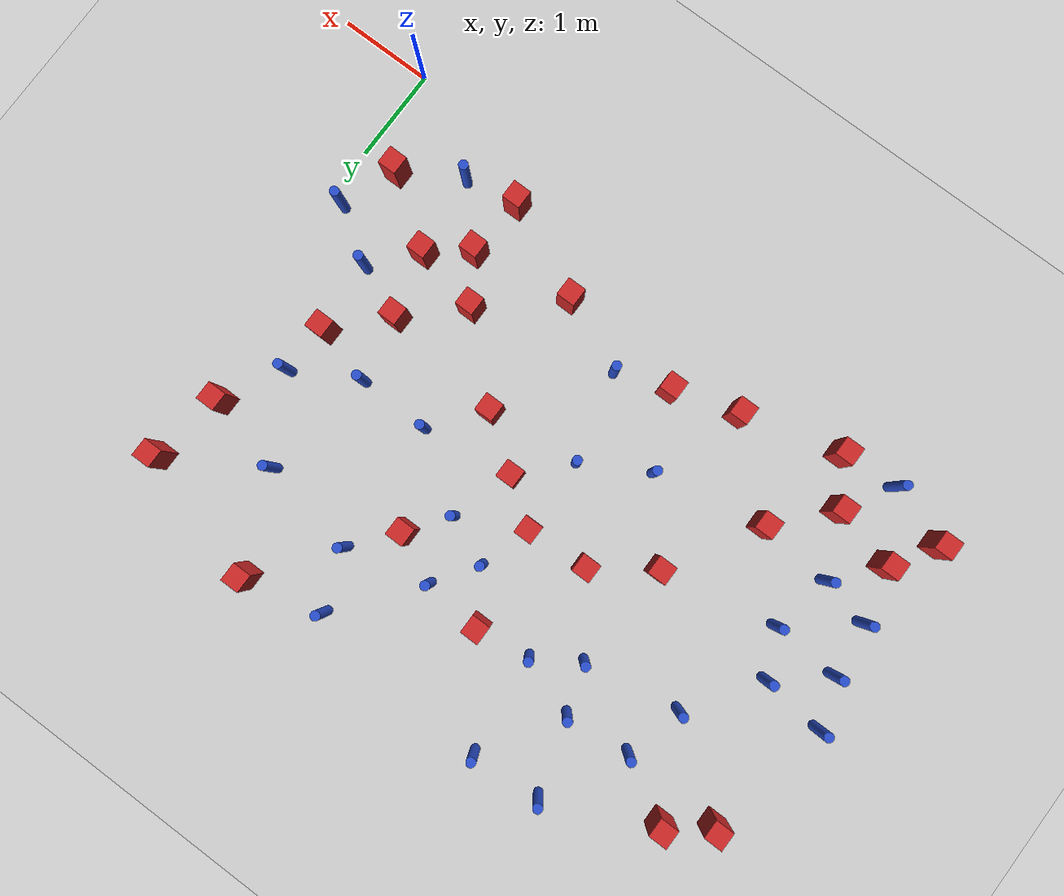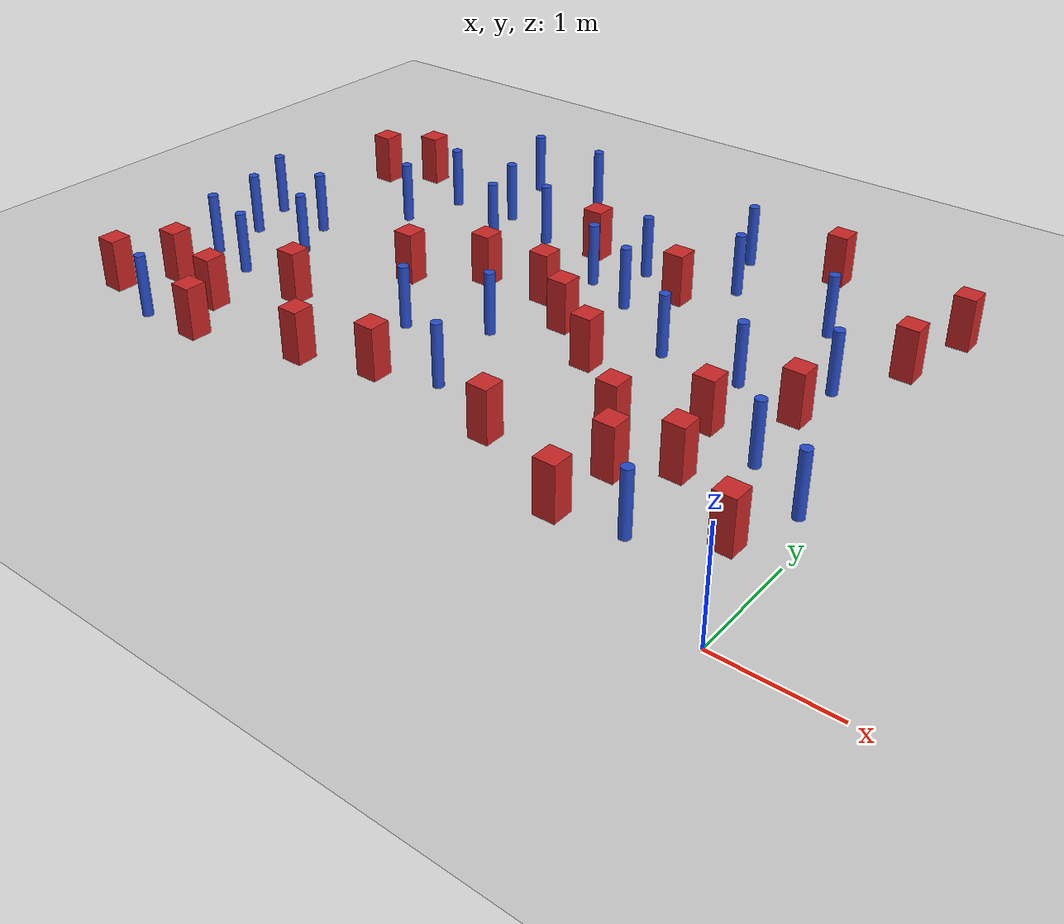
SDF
<sdf version="1.6">
 <world name="default">
  <model name="ground_plane">
   <static>1</static>
   <link name="link">
    <collision name="collision">
     <geometry><plane><normal>0 0 1</normal><size>100 100</size></plane></geometry>
     <surface><friction><ode><mu>100</mu><mu2>50</mu2></ode></friction></surface>
    </collision>
    <visual name="visual">
     <cast_shadows>0</cast_shadows>
     <geometry><plane><normal>0 0 1</normal><size>100 100</size></plane></geometry>
     <material>
      <ambient>1.0 1.0 1.0 1.0</ambient>
      <diffuse>0.8 0.8 0.8 1.0</diffuse>
      <specular>0.01 0.01 0.01 1.000000</specular>
     </material>
    </visual>
   </link>
  </model>
  <model name="square_post_obstacle0">
   <static>true</static>
   <pose>-1.15167169525 1.48119965441 1.91545236811e-07 -7.35059704564e-06 1.12565212e-07 2.39332434364e-05</pose>
   <link name="link">
    <pose>0 0 0.25 0 -0 0</pose>
    <inertial>
     <mass>100</mass>
     <inertia>
      <ixx>0.166667</ixx>
      <ixy>0</ixy>
      <ixz>0</ixz>
      <iyy>0.166667</iyy>
      <iyz>0</iyz>
      <izz>0.166667</izz>
     </inertia>
    </inertial>
    <collision name="collision"><geometry><box><size>.2 .2 .5</size></box></geometry></collision>
    <visual name="visual">
     <geometry><box><size>.2 .2 .5</size></box></geometry>
     <material>
      <script><name>Gazebo/Red</name><uri>file://media/materials/scripts/gazebo.material</uri></script>
     </material>
    </visual>
   </link>
  </model>
  <model name="square_post_obstacle5">
   <static>true</static>
   <pose>-6.61051850464 1.26924231321 1.91545236811e-07 -7.35059704564e-06 1.12565212e-07 2.39332434364e-05</pose>
   <link name="link">
    <pose>0 0 0.25 0 -0 0</pose>
    <inertial>
     <mass>100</mass>
     <inertia>
      <ixx>0.166667</ixx>
      <ixy>0</ixy>
      <ixz>0</ixz>
      <iyy>0.166667</iyy>
      <iyz>0</iyz>
      <izz>0.166667</izz>
     </inertia>
    </inertial>
    <collision name="collision"><geometry><box><size>.2 .2 .5</size></box></geometry></collision>
    <visual name="visual">
     <geometry><box><size>.2 .2 .5</size></box></geometry>
     <material>
      <script><name>Gazebo/Red</name><uri>file://media/materials/scripts/gazebo.material</uri></script>
     </material>
    </visual>
   </link>
  </model>
  <model name="square_post_obstacle11">
   <static>true</static>
   <pose>-3.7944851988 4.10195217841 1.91545236811e-07 -7.35059704564e-06 1.12565212e-07 2.39332434364e-05</pose>
   <link name="link">
    <pose>0 0 0.25 0 -0 0</pose>
    <inertial>
     <mass>100</mass>
     <inertia>
      <ixx>0.166667</ixx>
      <ixy>0</ixy>
      <ixz>0</ixz>
      <iyy>0.166667</iyy>
      <iyz>0</iyz>
      <izz>0.166667</izz>
     </inertia>
    </inertial>
    <collision name="collision"><geometry><box><size>.2 .2 .5</size></box></geometry></collision>
    <visual name="visual">
     <geometry><box><size>.2 .2 .5</size></box></geometry>
     <material>
      <script><name>Gazebo/Red</name><uri>file://media/materials/scripts/gazebo.material</uri></script>
     </material>
    </visual>
   </link>
  </model>
  <model name="square_post_obstacle20">
   <static>true</static>
   <pose>-6.71002976934 4.24641081246 1.91545236811e-07 -7.35059704564e-06 1.12565212e-07 2.39332434364e-05</pose>
   <link name="link">
    <pose>0 0 0.25 0 -0 0</pose>
    <inertial>
     <mass>100</mass>
     <inertia>
      <ixx>0.166667</ixx>
      <ixy>0</ixy>
      <ixz>0</ixz>
      <iyy>0.166667</iyy>
      <iyz>0</iyz>
      <izz>0.166667</izz>
     </inertia>
    </inertial>
    <collision name="collision"><geometry><box><size>.2 .2 .5</size></box></geometry></collision>
    <visual name="visual">
     <geometry><box><size>.2 .2 .5</size></box></geometry>
     <material>
      <script><name>Gazebo/Red</name><uri>file://media/materials/scripts/gazebo.material</uri></script>
     </material>
    </visual>
   </link>
  </model>
  <model name="square_post_obstacle21">
   <static>true</static>
   <pose>-2.60071214731 0.984499422258 1.91545236811e-07 -7.35059704564e-06 1.12565212e-07 2.39332434364e-05</pose>
   <link name="link">
    <pose>0 0 0.25 0 -0 0</pose>
    <inertial>
     <mass>100</mass>
     <inertia>
      <ixx>0.166667</ixx>
      <ixy>0</ixy>
      <ixz>0</ixz>
      <iyy>0.166667</iyy>
      <iyz>0</iyz>
      <izz>0.166667</izz>
     </inertia>
    </inertial>
    <collision name="collision"><geometry><box><size>.2 .2 .5</size></box></geometry></collision>
    <visual name="visual">
     <geometry><box><size>.2 .2 .5</size></box></geometry>
     <material>
      <script><name>Gazebo/Red</name><uri>file://media/materials/scripts/gazebo.material</uri></script>
     </material>
    </visual>
   </link>
  </model>
  <model name="pole_obstacle13">
   <static>true</static>
   <pose>-3.38349971992 1.31825581663 7.38925637345e-09 -8.471706928e-08 1.24976765152e-08 -1.74513093012e-07</pose>
   <link name="link">
    <pose>0 0 0.3 0 -0 0</pose>
    <inertial>
     <mass>1</mass>
     <inertia><ixx>0.145833</ixx><ixy>0</ixy><ixz>0</ixz><iyy>0.145833</iyy><iyz>0</iyz><izz>0.125</izz></inertia>
    </inertial>
    <collision name="collision">
     <geometry><cylinder><radius>0.05</radius><length>.6</length></cylinder></geometry>
    </collision>
    <visual name="visual">
     <geometry><cylinder><radius>0.05</radius><length>.6</length></cylinder></geometry>
     <material>
      <script><name>Gazebo/Blue</name><uri>file://media/materials/scripts/gazebo.material</uri></script>
     </material>
    </visual>
   </link>
  </model>
  <model name="square_post_obstacle24">
   <static>true</static>
   <pose>-5.64484873691 0.637966782382 1.91545236811e-07 -7.35059704564e-06 1.12565212e-07 2.39332434364e-05</pose>
   <link name="link">
    <pose>0 0 0.25 0 -0 0</pose>
    <inertial>
     <mass>100</mass>
     <inertia>
      <ixx>0.166667</ixx>
      <ixy>0</ixy>
      <ixz>0</ixz>
      <iyy>0.166667</iyy>
      <iyz>0</iyz>
      <izz>0.166667</izz>
     </inertia>
    </inertial>
    <collision name="collision"><geometry><box><size>.2 .2 .5</size></box></geometry></collision>
    <visual name="visual">
     <geometry><box><size>.2 .2 .5</size></box></geometry>
     <material>
      <script><name>Gazebo/Red</name><uri>file://media/materials/scripts/gazebo.material</uri></script>
     </material>
    </visual>
   </link>
  </model>
  <model name="pole_obstacle19">
   <static>true</static>
   <pose>-5.21628739319 5.02568930286 7.38925637345e-09 -8.47170692796e-08 1.24976764786e-08 -1.74513093032e-07</pose>
   <link name="link">
    <pose>0 0 0.3 0 -0 0</pose>
    <inertial>
     <mass>1</mass>
     <inertia><ixx>0.145833</ixx><ixy>0</ixy><ixz>0</ixz><iyy>0.145833</iyy><iyz>0</iyz><izz>0.125</izz></inertia>
    </inertial>
    <collision name="collision">
     <geometry><cylinder><radius>0.05</radius><length>.6</length></cylinder></geometry>
    </collision>
    <visual name="visual">
     <geometry><cylinder><radius>0.05</radius><length>.6</length></cylinder></geometry>
     <material>
      <script><name>Gazebo/Blue</name><uri>file://media/materials/scripts/gazebo.material</uri></script>
     </material>
    </visual>
   </link>
  </model>
  <model name="square_post_obstacle32">
   <static>true</static>
   <pose>-4.61142146969 0.920190093058 1.91545236811e-07 -7.35059704564e-06 1.12565212e-07 2.39332434364e-05</pose>
   <link name="link">
    <pose>0 0 0.25 0 -0 0</pose>
    <inertial>
     <mass>100</mass>
     <inertia>
      <ixx>0.166667</ixx>
      <ixy>0</ixy>
      <ixz>0</ixz>
      <iyy>0.166667</iyy>
      <iyz>0</iyz>
      <izz>0.166667</izz>
     </inertia>
    </inertial>
    <collision name="collision"><geometry><box><size>.2 .2 .5</size></box></geometry></collision>
    <visual name="visual">
     <geometry><box><size>.2 .2 .5</size></box></geometry>
     <material>
      <script><name>Gazebo/Red</name><uri>file://media/materials/scripts/gazebo.material</uri></script>
     </material>
    </visual>
   </link>
  </model>
  <model name="square_post_obstacle34">
   <static>true</static>
   <pose>-3.63572931894 3.06008303727 1.91545236811e-07 -7.35059704564e-06 1.12565212e-07 2.39332434364e-05</pose>
   <link name="link">
    <pose>0 0 0.25 0 -0 0</pose>
    <inertial>
     <mass>100</mass>
     <inertia>
      <ixx>0.166667</ixx>
      <ixy>0</ixy>
      <ixz>0</ixz>
      <iyy>0.166667</iyy>
      <iyz>0</iyz>
      <izz>0.166667</izz>
     </inertia>
    </inertial>
    <collision name="collision"><geometry><box><size>.2 .2 .5</size></box></geometry></collision>
    <visual name="visual">
     <geometry><box><size>.2 .2 .5</size></box></geometry>
     <material>
      <script><name>Gazebo/Red</name><uri>file://media/materials/scripts/gazebo.material</uri></script>
     </material>
    </visual>
   </link>
  </model>
  <model name="pole_obstacle35">
   <static>true</static>
   <pose>-5.6554413052 4.18641419982 7.38925637345e-09 -8.47170692796e-08 1.24976764786e-08 -1.74513093032e-07</pose>
   <link name="link">
    <pose>0 0 0.3 0 -0 0</pose>
    <inertial>
     <mass>1</mass>
     <inertia><ixx>0.145833</ixx><ixy>0</ixy><ixz>0</ixz><iyy>0.145833</iyy><iyz>0</iyz><izz>0.125</izz></inertia>
    </inertial>
    <collision name="collision">
     <geometry><cylinder><radius>0.05</radius><length>.6</length></cylinder></geometry>
    </collision>
    <visual name="visual">
     <geometry><cylinder><radius>0.05</radius><length>.6</length></cylinder></geometry>
     <material>
      <script><name>Gazebo/Blue</name><uri>file://media/materials/scripts/gazebo.material</uri></script>
     </material>
    </visual>
   </link>
  </model>
  <model name="pole_obstacle36">
   <static>true</static>
   <pose>-4.976953517 4.24660726046 7.38925637345e-09 -8.47170692796e-08 1.24976764786e-08 -1.74513093032e-07</pose>
   <link name="link">
    <pose>0 0 0.3 0 -0 0</pose>
    <inertial>
     <mass>1</mass>
     <inertia><ixx>0.145833</ixx><ixy>0</ixy><ixz>0</ixz><iyy>0.145833</iyy><iyz>0</iyz><izz>0.125</izz></inertia>
    </inertial>
    <collision name="collision">
     <geometry><cylinder><radius>0.05</radius><length>.6</length></cylinder></geometry>
    </collision>
    <visual name="visual">
     <geometry><cylinder><radius>0.05</radius><length>.6</length></cylinder></geometry>
     <material>
      <script><name>Gazebo/Blue</name><uri>file://media/materials/scripts/gazebo.material</uri></script>
     </material>
    </visual>
   </link>
  </model>
  <model name="pole_obstacle37">
   <static>true</static>
   <pose>-0.792320383748 3.22404253543 7.38925637345e-09 -8.47170692799e-08 1.2497676509e-08 -1.74513093016e-07</pose>
   <link name="link">
    <pose>0 0 0.3 0 -0 0</pose>
    <inertial>
     <mass>1</mass>
     <inertia><ixx>0.145833</ixx><ixy>0</ixy><ixz>0</ixz><iyy>0.145833</iyy><iyz>0</iyz><izz>0.125</izz></inertia>
    </inertial>
    <collision name="collision">
     <geometry><cylinder><radius>0.05</radius><length>.6</length></cylinder></geometry>
    </collision>
    <visual name="visual">
     <geometry><cylinder><radius>0.05</radius><length>.6</length></cylinder></geometry>
     <material>
      <script><name>Gazebo/Blue</name><uri>file://media/materials/scripts/gazebo.material</uri></script>
     </material>
    </visual>
   </link>
  </model>
  <model name="pole_obstacle49">
   <static>true</static>
   <pose>-6.22152533001 1.74225585569 7.38925637345e-09 -8.471706928e-08 1.24976765134e-08 -1.74513093015e-07</pose>
   <link name="link">
    <pose>0 0 0.3 0 -0 0</pose>
    <inertial>
     <mass>1</mass>
     <inertia><ixx>0.145833</ixx><ixy>0</ixy><ixz>0</ixz><iyy>0.145833</iyy><iyz>0</iyz><izz>0.125</izz></inertia>
    </inertial>
    <collision name="collision">
     <geometry><cylinder><radius>0.05</radius><length>.6</length></cylinder></geometry>
    </collision>
    <visual name="visual">
     <geometry><cylinder><radius>0.05</radius><length>.6</length></cylinder></geometry>
     <material>
      <script><name>Gazebo/Blue</name><uri>file://media/materials/scripts/gazebo.material</uri></script>
     </material>
    </visual>
   </link>
  </model>
  <model name="square_post_obstacle53">
   <static>true</static>
   <pose>-0.418633634462 0.977801018607 1.91545236811e-07 -7.35059704564e-06 1.12565212e-07 2.39332434364e-05</pose>
   <link name="link">
    <pose>0 0 0.25 0 -0 0</pose>
    <inertial>
     <mass>100</mass>
     <inertia>
      <ixx>0.166667</ixx>
      <ixy>0</ixy>
      <ixz>0</ixz>
      <iyy>0.166667</iyy>
      <iyz>0</iyz>
      <izz>0.166667</izz>
     </inertia>
    </inertial>
    <collision name="collision"><geometry><box><size>.2 .2 .5</size></box></geometry></collision>
    <visual name="visual">
     <geometry><box><size>.2 .2 .5</size></box></geometry>
     <material>
      <script><name>Gazebo/Red</name><uri>file://media/materials/scripts/gazebo.material</uri></script>
     </material>
    </visual>
   </link>
  </model>
  <model name="square_post_obstacle60">
   <static>true</static>
   <pose>-1.86642811251 1.64112632528 1.91545236811e-07 -7.35059704564e-06 1.12565212e-07 2.39332434364e-05</pose>
   <link name="link">
    <pose>0 0 0.25 0 -0 0</pose>
    <inertial>
     <mass>100</mass>
     <inertia>
      <ixx>0.166667</ixx>
      <ixy>0</ixy>
      <ixz>0</ixz>
      <iyy>0.166667</iyy>
      <iyz>0</iyz>
      <izz>0.166667</izz>
     </inertia>
    </inertial>
    <collision name="collision"><geometry><box><size>.2 .2 .5</size></box></geometry></collision>
    <visual name="visual">
     <geometry><box><size>.2 .2 .5</size></box></geometry>
     <material>
      <script><name>Gazebo/Red</name><uri>file://media/materials/scripts/gazebo.material</uri></script>
     </material>
    </visual>
   </link>
  </model>
  <model name="square_post_obstacle65">
   <static>true</static>
   <pose>-1.70158094196 5.06126418369 1.91545236811e-07 -7.35059704564e-06 1.12565212e-07 2.39332434364e-05</pose>
   <link name="link">
    <pose>0 0 0.25 0 -0 0</pose>
    <inertial>
     <mass>100</mass>
     <inertia>
      <ixx>0.166667</ixx>
      <ixy>0</ixy>
      <ixz>0</ixz>
      <iyy>0.166667</iyy>
      <iyz>0</iyz>
      <izz>0.166667</izz>
     </inertia>
    </inertial>
    <collision name="collision"><geometry><box><size>.2 .2 .5</size></box></geometry></collision>
    <visual name="visual">
     <geometry><box><size>.2 .2 .5</size></box></geometry>
     <material>
      <script><name>Gazebo/Red</name><uri>file://media/materials/scripts/gazebo.material</uri></script>
     </material>
    </visual>
   </link>
  </model>
  <model name="pole_obstacle63">
   <static>true</static>
   <pose>-6.08721133346 2.37962762399 7.38925637345e-09 -8.47170692798e-08 1.24976764937e-08 -1.74513093023e-07</pose>
   <link name="link">
    <pose>0 0 0.3 0 -0 0</pose>
    <inertial>
     <mass>1</mass>
     <inertia><ixx>0.145833</ixx><ixy>0</ixy><ixz>0</ixz><iyy>0.145833</iyy><iyz>0</iyz><izz>0.125</izz></inertia>
    </inertial>
    <collision name="collision">
     <geometry><cylinder><radius>0.05</radius><length>.6</length></cylinder></geometry>
    </collision>
    <visual name="visual">
     <geometry><cylinder><radius>0.05</radius><length>.6</length></cylinder></geometry>
     <material>
      <script><name>Gazebo/Blue</name><uri>file://media/materials/scripts/gazebo.material</uri></script>
     </material>
    </visual>
   </link>
  </model>
  <model name="square_post_obstacle73">
   <static>true</static>
   <pose>-2.67616729862 3.79915630854 1.91545236811e-07 -7.35059704564e-06 1.12565212e-07 2.39332434364e-05</pose>
   <link name="link">
    <pose>0 0 0.25 0 -0 0</pose>
    <inertial>
     <mass>100</mass>
     <inertia>
      <ixx>0.166667</ixx>
      <ixy>0</ixy>
      <ixz>0</ixz>
      <iyy>0.166667</iyy>
      <iyz>0</iyz>
      <izz>0.166667</izz>
     </inertia>
    </inertial>
    <collision name="collision"><geometry><box><size>.2 .2 .5</size></box></geometry></collision>
    <visual name="visual">
     <geometry><box><size>.2 .2 .5</size></box></geometry>
     <material>
      <script><name>Gazebo/Red</name><uri>file://media/materials/scripts/gazebo.material</uri></script>
     </material>
    </visual>
   </link>
  </model>
  <model name="square_post_obstacle74">
   <static>true</static>
   <pose>-3.93020035384 1.12391905368 1.91545236811e-07 -7.35059704564e-06 1.12565212e-07 2.39332434364e-05</pose>
   <link name="link">
    <pose>0 0 0.25 0 -0 0</pose>
    <inertial>
     <mass>100</mass>
     <inertia>
      <ixx>0.166667</ixx>
      <ixy>0</ixy>
      <ixz>0</ixz>
      <iyy>0.166667</iyy>
      <iyz>0</iyz>
      <izz>0.166667</izz>
     </inertia>
    </inertial>
    <collision name="collision"><geometry><box><size>.2 .2 .5</size></box></geometry></collision>
    <visual name="visual">
     <geometry><box><size>.2 .2 .5</size></box></geometry>
     <material>
      <script><name>Gazebo/Red</name><uri>file://media/materials/scripts/gazebo.material</uri></script>
     </material>
    </visual>
   </link>
  </model>
  <model name="pole_obstacle75">
   <static>true</static>
   <pose>-6.80258495736 2.42777717313 7.38925637345e-09 -8.47170692798e-08 1.24976764937e-08 -1.74513093023e-07</pose>
   <link name="link">
    <pose>0 0 0.3 0 -0 0</pose>
    <inertial>
     <mass>1</mass>
     <inertia><ixx>0.145833</ixx><ixy>0</ixy><ixz>0</ixz><iyy>0.145833</iyy><iyz>0</iyz><izz>0.125</izz></inertia>
    </inertial>
    <collision name="collision">
     <geometry><cylinder><radius>0.05</radius><length>.6</length></cylinder></geometry>
    </collision>
    <visual name="visual">
     <geometry><cylinder><radius>0.05</radius><length>.6</length></cylinder></geometry>
     <material>
      <script><name>Gazebo/Blue</name><uri>file://media/materials/scripts/gazebo.material</uri></script>
     </material>
    </visual>
   </link>
  </model>
  <model name="pole_obstacle80">
   <static>true</static>
   <pose>-2.52905331924 4.87338064335 7.38925637345e-09 -8.47170692798e-08 1.24976765033e-08 -1.74513093019e-07</pose>
   <link name="link">
    <pose>0 0 0.3 0 -0 0</pose>
    <inertial>
     <mass>1</mass>
     <inertia><ixx>0.145833</ixx><ixy>0</ixy><ixz>0</ixz><iyy>0.145833</iyy><iyz>0</iyz><izz>0.125</izz></inertia>
    </inertial>
    <collision name="collision">
     <geometry><cylinder><radius>0.05</radius><length>.6</length></cylinder></geometry>
    </collision>
    <visual name="visual">
     <geometry><cylinder><radius>0.05</radius><length>.6</length></cylinder></geometry>
     <material>
      <script><name>Gazebo/Blue</name><uri>file://media/materials/scripts/gazebo.material</uri></script>
     </material>
    </visual>
   </link>
  </model>
  <model name="square_post_obstacle83">
   <static>true</static>
   <pose>-5.43720083369 1.6620142187 1.91545236811e-07 -7.35059704564e-06 1.12565212e-07 2.39332434364e-05</pose>
   <link name="link">
    <pose>0 0 0.25 0 -0 0</pose>
    <inertial>
     <mass>100</mass>
     <inertia>
      <ixx>0.166667</ixx>
      <ixy>0</ixy>
      <ixz>0</ixz>
      <iyy>0.166667</iyy>
      <iyz>0</iyz>
      <izz>0.166667</izz>
     </inertia>
    </inertial>
    <collision name="collision"><geometry><box><size>.2 .2 .5</size></box></geometry></collision>
    <visual name="visual">
     <geometry><box><size>.2 .2 .5</size></box></geometry>
     <material>
      <script><name>Gazebo/Red</name><uri>file://media/materials/scripts/gazebo.material</uri></script>
     </material>
    </visual>
   </link>
  </model>
  <model name="pole_obstacle96">
   <static>true</static>
   <pose>-6.24241305478 0.59931680345 7.38925637345e-09 -8.47170692799e-08 1.24976765038e-08 -1.74513093018e-07</pose>
   <link name="link">
    <pose>0 0 0.3 0 -0 0</pose>
    <inertial>
     <mass>1</mass>
     <inertia><ixx>0.145833</ixx><ixy>0</ixy><ixz>0</ixz><iyy>0.145833</iyy><iyz>0</iyz><izz>0.125</izz></inertia>
    </inertial>
    <collision name="collision">
     <geometry><cylinder><radius>0.05</radius><length>.6</length></cylinder></geometry>
    </collision>
    <visual name="visual">
     <geometry><cylinder><radius>0.05</radius><length>.6</length></cylinder></geometry>
     <material>
      <script><name>Gazebo/Blue</name><uri>file://media/materials/scripts/gazebo.material</uri></script>
     </material>
    </visual>
   </link>
  </model>
  <model name="square_post_obstacle92">
   <static>true</static>
   <pose>-2.63749674755 2.35080751234 1.91545236811e-07 -7.35059704564e-06 1.12565212e-07 2.39332434364e-05</pose>
   <link name="link">
    <pose>0 0 0.25 0 -0 0</pose>
    <inertial>
     <mass>100</mass>
     <inertia>
      <ixx>0.166667</ixx>
      <ixy>0</ixy>
      <ixz>0</ixz>
      <iyy>0.166667</iyy>
      <iyz>0</iyz>
      <izz>0.166667</izz>
     </inertia>
    </inertial>
    <collision name="collision"><geometry><box><size>.2 .2 .5</size></box></geometry></collision>
    <visual name="visual">
     <geometry><box><size>.2 .2 .5</size></box></geometry>
     <material>
      <script><name>Gazebo/Red</name><uri>file://media/materials/scripts/gazebo.material</uri></script>
     </material>
    </visual>
   </link>
  </model>
  <model name="pole_obstacle106">
   <static>true</static>
   <pose>-6.30868615066 2.85026427025 7.38925637345e-09 -8.47170692798e-08 1.24976764937e-08 -1.74513093023e-07</pose>
   <link name="link">
    <pose>0 0 0.3 0 -0 0</pose>
    <inertial>
     <mass>1</mass>
     <inertia><ixx>0.145833</ixx><ixy>0</ixy><ixz>0</ixz><iyy>0.145833</iyy><iyz>0</iyz><izz>0.125</izz></inertia>
    </inertial>
    <collision name="collision">
     <geometry><cylinder><radius>0.05</radius><length>.6</length></cylinder></geometry>
    </collision>
    <visual name="visual">
     <geometry><cylinder><radius>0.05</radius><length>.6</length></cylinder></geometry>
     <material>
      <script><name>Gazebo/Blue</name><uri>file://media/materials/scripts/gazebo.material</uri></script>
     </material>
    </visual>
   </link>
  </model>
  <model name="pole_obstacle107">
   <static>true</static>
   <pose>-0.192279807094 1.57673442069 7.38925637345e-09 -8.471706928e-08 1.24976765082e-08 -1.74513093016e-07</pose>
   <link name="link">
    <pose>0 0 0.3 0 -0 0</pose>
    <inertial>
     <mass>1</mass>
     <inertia><ixx>0.145833</ixx><ixy>0</ixy><ixz>0</ixz><iyy>0.145833</iyy><iyz>0</iyz><izz>0.125</izz></inertia>
    </inertial>
    <collision name="collision">
     <geometry><cylinder><radius>0.05</radius><length>.6</length></cylinder></geometry>
    </collision>
    <visual name="visual">
     <geometry><cylinder><radius>0.05</radius><length>.6</length></cylinder></geometry>
     <material>
      <script><name>Gazebo/Blue</name><uri>file://media/materials/scripts/gazebo.material</uri></script>
     </material>
    </visual>
   </link>
  </model>
  <model name="square_post_obstacle103">
   <static>true</static>
   <pose>-6.90593164181 0.809870338197 1.91545236811e-07 -7.35059704564e-06 1.12565212e-07 2.39332434364e-05</pose>
   <link name="link">
    <pose>0 0 0.25 0 -0 0</pose>
    <inertial>
     <mass>100</mass>
     <inertia>
      <ixx>0.166667</ixx>
      <ixy>0</ixy>
      <ixz>0</ixz>
      <iyy>0.166667</iyy>
      <iyz>0</iyz>
      <izz>0.166667</izz>
     </inertia>
    </inertial>
    <collision name="collision"><geometry><box><size>.2 .2 .5</size></box></geometry></collision>
    <visual name="visual">
     <geometry><box><size>.2 .2 .5</size></box></geometry>
     <material>
      <script><name>Gazebo/Red</name><uri>file://media/materials/scripts/gazebo.material</uri></script>
     </material>
    </visual>
   </link>
  </model>
  <model name="pole_obstacle123">
   <static>true</static>
   <pose>-2.22186479773 2.87990388418 7.38925637345e-09 -8.47170692798e-08 1.24976764939e-08 -1.74513093025e-07</pose>
   <link name="link">
    <pose>0 0 0.3 0 -0 0</pose>
    <inertial>
     <mass>1</mass>
     <inertia><ixx>0.145833</ixx><ixy>0</ixy><ixz>0</ixz><iyy>0.145833</iyy><iyz>0</iyz><izz>0.125</izz></inertia>
    </inertial>
    <collision name="collision">
     <geometry><cylinder><radius>0.05</radius><length>.6</length></cylinder></geometry>
    </collision>
    <visual name="visual">
     <geometry><cylinder><radius>0.05</radius><length>.6</length></cylinder></geometry>
     <material>
      <script><name>Gazebo/Blue</name><uri>file://media/materials/scripts/gazebo.material</uri></script>
     </material>
    </visual>
   </link>
  </model>
  <model name="pole_obstacle128">
   <static>true</static>
   <pose>-4.36503265394 4.02878185626 7.38925637345e-09 -8.47170692797e-08 1.24976764805e-08 -1.74513093031e-07</pose>
   <link name="link">
    <pose>0 0 0.3 0 -0 0</pose>
    <inertial>
     <mass>1</mass>
     <inertia><ixx>0.145833</ixx><ixy>0</ixy><ixz>0</ixz><iyy>0.145833</iyy><iyz>0</iyz><izz>0.125</izz></inertia>
    </inertial>
    <collision name="collision">
     <geometry><cylinder><radius>0.05</radius><length>.6</length></cylinder></geometry>
    </collision>
    <visual name="visual">
     <geometry><cylinder><radius>0.05</radius><length>.6</length></cylinder></geometry>
     <material>
      <script><name>Gazebo/Blue</name><uri>file://media/materials/scripts/gazebo.material</uri></script>
     </material>
    </visual>
   </link>
  </model>
  <model name="square_post_obstacle117">
   <static>true</static>
   <pose>-5.93484622125 1.1046135619 1.91545236811e-07 -7.35059704564e-06 1.12565212e-07 2.39332434364e-05</pose>
   <link name="link">
    <pose>0 0 0.25 0 -0 0</pose>
    <inertial>
     <mass>100</mass>
     <inertia>
      <ixx>0.166667</ixx>
      <ixy>0</ixy>
      <ixz>0</ixz>
      <iyy>0.166667</iyy>
      <iyz>0</iyz>
      <izz>0.166667</izz>
     </inertia>
    </inertial>
    <collision name="collision"><geometry><box><size>.2 .2 .5</size></box></geometry></collision>
    <visual name="visual">
     <geometry><box><size>.2 .2 .5</size></box></geometry>
     <material>
      <script><name>Gazebo/Red</name><uri>file://media/materials/scripts/gazebo.material</uri></script>
     </material>
    </visual>
   </link>
  </model>
  <model name="pole_obstacle140">
   <static>true</static>
   <pose>-4.48339437272 5.06399902742 7.38925637345e-09 -8.47170692796e-08 1.24976764786e-08 -1.74513093032e-07</pose>
   <link name="link">
    <pose>0 0 0.3 0 -0 0</pose>
    <inertial>
     <mass>1</mass>
     <inertia><ixx>0.145833</ixx><ixy>0</ixy><ixz>0</ixz><iyy>0.145833</iyy><iyz>0</iyz><izz>0.125</izz></inertia>
    </inertial>
    <collision name="collision">
     <geometry><cylinder><radius>0.05</radius><length>.6</length></cylinder></geometry>
    </collision>
    <visual name="visual">
     <geometry><cylinder><radius>0.05</radius><length>.6</length></cylinder></geometry>
     <material>
      <script><name>Gazebo/Blue</name><uri>file://media/materials/scripts/gazebo.material</uri></script>
     </material>
    </visual>
   </link>
  </model>
  <model name="pole_obstacle142">
   <static>true</static>
   <pose>-1.45780321384 2.86415673481 7.38925637345e-09 -8.47170692799e-08 1.24976765053e-08 -1.74513093017e-07</pose>
   <link name="link">
    <pose>0 0 0.3 0 -0 0</pose>
    <inertial>
     <mass>1</mass>
     <inertia><ixx>0.145833</ixx><ixy>0</ixy><ixz>0</ixz><iyy>0.145833</iyy><iyz>0</iyz><izz>0.125</izz></inertia>
    </inertial>
    <collision name="collision">
     <geometry><cylinder><radius>0.05</radius><length>.6</length></cylinder></geometry>
    </collision>
    <visual name="visual">
     <geometry><cylinder><radius>0.05</radius><length>.6</length></cylinder></geometry>
     <material>
      <script><name>Gazebo/Blue</name><uri>file://media/materials/scripts/gazebo.material</uri></script>
     </material>
    </visual>
   </link>
  </model>
  <model name="square_post_obstacle130">
   <static>true</static>
   <pose>-4.87802795118 2.60964916542 1.91545236811e-07 -7.35059704564e-06 1.12565212e-07 2.39332434364e-05</pose>
   <link name="link">
    <pose>0 0 0.25 0 -0 0</pose>
    <inertial>
     <mass>100</mass>
     <inertia>
      <ixx>0.166667</ixx>
      <ixy>0</ixy>
      <ixz>0</ixz>
      <iyy>0.166667</iyy>
      <iyz>0</iyz>
      <izz>0.166667</izz>
     </inertia>
    </inertial>
    <collision name="collision"><geometry><box><size>.2 .2 .5</size></box></geometry></collision>
    <visual name="visual">
     <geometry><box><size>.2 .2 .5</size></box></geometry>
     <material>
      <script><name>Gazebo/Red</name><uri>file://media/materials/scripts/gazebo.material</uri></script>
     </material>
    </visual>
   </link>
  </model>
  <model name="square_post_obstacle133">
   <static>true</static>
   <pose>-3.17981254272 2.73762950059 1.91545236811e-07 -7.35059704564e-06 1.12565212e-07 2.39332434364e-05</pose>
   <link name="link">
    <pose>0 0 0.25 0 -0 0</pose>
    <inertial>
     <mass>100</mass>
     <inertia>
      <ixx>0.166667</ixx>
      <ixy>0</ixy>
      <ixz>0</ixz>
      <iyy>0.166667</iyy>
      <iyz>0</iyz>
      <izz>0.166667</izz>
     </inertia>
    </inertial>
    <collision name="collision"><geometry><box><size>.2 .2 .5</size></box></geometry></collision>
    <visual name="visual">
     <geometry><box><size>.2 .2 .5</size></box></geometry>
     <material>
      <script><name>Gazebo/Red</name><uri>file://media/materials/scripts/gazebo.material</uri></script>
     </material>
    </visual>
   </link>
  </model>
  <model name="square_post_obstacle136">
   <static>true</static>
   <pose>-0.293994082614 4.64503286132 1.91545236811e-07 -7.35059704564e-06 1.12565212e-07 2.39332434364e-05</pose>
   <link name="link">
    <pose>0 0 0.25 0 -0 0</pose>
    <inertial>
     <mass>100</mass>
     <inertia>
      <ixx>0.166667</ixx>
      <ixy>0</ixy>
      <ixz>0</ixz>
      <iyy>0.166667</iyy>
      <iyz>0</iyz>
      <izz>0.166667</izz>
     </inertia>
    </inertial>
    <collision name="collision"><geometry><box><size>.2 .2 .5</size></box></geometry></collision>
    <visual name="visual">
     <geometry><box><size>.2 .2 .5</size></box></geometry>
     <material>
      <script><name>Gazebo/Red</name><uri>file://media/materials/scripts/gazebo.material</uri></script>
     </material>
    </visual>
   </link>
  </model>
  <model name="pole_obstacle152">
   <static>true</static>
   <pose>-1.27402452147 4.070401671 7.38925637345e-09 -8.47170692799e-08 1.24976765033e-08 -1.74513093018e-07</pose>
   <link name="link">
    <pose>0 0 0.3 0 -0 0</pose>
    <inertial>
     <mass>1</mass>
     <inertia><ixx>0.145833</ixx><ixy>0</ixy><ixz>0</ixz><iyy>0.145833</iyy><iyz>0</iyz><izz>0.125</izz></inertia>
    </inertial>
    <collision name="collision">
     <geometry><cylinder><radius>0.05</radius><length>.6</length></cylinder></geometry>
    </collision>
    <visual name="visual">
     <geometry><cylinder><radius>0.05</radius><length>.6</length></cylinder></geometry>
     <material>
      <script><name>Gazebo/Blue</name><uri>file://media/materials/scripts/gazebo.material</uri></script>
     </material>
    </visual>
   </link>
  </model>
  <model name="square_post_obstacle155">
   <static>true</static>
   <pose>-6.29289454416 4.5356931699 1.91545236811e-07 -7.35059704564e-06 1.12565212e-07 2.39332434364e-05</pose>
   <link name="link">
    <pose>0 0 0.25 0 -0 0</pose>
    <inertial>
     <mass>100</mass>
     <inertia>
      <ixx>0.166667</ixx>
      <ixy>0</ixy>
      <ixz>0</ixz>
      <iyy>0.166667</iyy>
      <iyz>0</iyz>
      <izz>0.166667</izz>
     </inertia>
    </inertial>
    <collision name="collision"><geometry><box><size>.2 .2 .5</size></box></geometry></collision>
    <visual name="visual">
     <geometry><box><size>.2 .2 .5</size></box></geometry>
     <material>
      <script><name>Gazebo/Red</name><uri>file://media/materials/scripts/gazebo.material</uri></script>
     </material>
    </visual>
   </link>
  </model>
  <model name="square_post_obstacle162">
   <static>true</static>
   <pose>-0.44368569918 3.85534633584 1.91545236811e-07 -7.35059704564e-06 1.12565212e-07 2.39332434364e-05</pose>
   <link name="link">
    <pose>0 0 0.25 0 -0 0</pose>
    <inertial>
     <mass>100</mass>
     <inertia>
      <ixx>0.166667</ixx>
      <ixy>0</ixy>
      <ixz>0</ixz>
      <iyy>0.166667</iyy>
      <iyz>0</iyz>
      <izz>0.166667</izz>
     </inertia>
    </inertial>
    <collision name="collision"><geometry><box><size>.2 .2 .5</size></box></geometry></collision>
    <visual name="visual">
     <geometry><box><size>.2 .2 .5</size></box></geometry>
     <material>
      <script><name>Gazebo/Red</name><uri>file://media/materials/scripts/gazebo.material</uri></script>
     </material>
    </visual>
   </link>
  </model>
  <model name="pole_obstacle177">
   <static>true</static>
   <pose>-6.74400204833 1.85708693328 7.38925637345e-09 -8.471706928e-08 1.24976765134e-08 -1.74513093015e-07</pose>
   <link name="link">
    <pose>0 0 0.3 0 -0 0</pose>
    <inertial>
     <mass>1</mass>
     <inertia><ixx>0.145833</ixx><ixy>0</ixy><ixz>0</ixz><iyy>0.145833</iyy><iyz>0</iyz><izz>0.125</izz></inertia>
    </inertial>
    <collision name="collision">
     <geometry><cylinder><radius>0.05</radius><length>.6</length></cylinder></geometry>
    </collision>
    <visual name="visual">
     <geometry><cylinder><radius>0.05</radius><length>.6</length></cylinder></geometry>
     <material>
      <script><name>Gazebo/Blue</name><uri>file://media/materials/scripts/gazebo.material</uri></script>
     </material>
    </visual>
   </link>
  </model>
  <model name="pole_obstacle179">
   <static>true</static>
   <pose>-5.80690202438 3.57969895711 7.38925637345e-09 -8.47170692798e-08 1.24976764937e-08 -1.74513093023e-07</pose>
   <link name="link">
    <pose>0 0 0.3 0 -0 0</pose>
    <inertial>
     <mass>1</mass>
     <inertia><ixx>0.145833</ixx><ixy>0</ixy><ixz>0</ixz><iyy>0.145833</iyy><iyz>0</iyz><izz>0.125</izz></inertia>
    </inertial>
    <collision name="collision">
     <geometry><cylinder><radius>0.05</radius><length>.6</length></cylinder></geometry>
    </collision>
    <visual name="visual">
     <geometry><cylinder><radius>0.05</radius><length>.6</length></cylinder></geometry>
     <material>
      <script><name>Gazebo/Blue</name><uri>file://media/materials/scripts/gazebo.material</uri></script>
     </material>
    </visual>
   </link>
  </model>
  <model name="square_post_obstacle170">
   <static>true</static>
   <pose>-0.83719441505 2.68179549432 1.91545236811e-07 -7.35059704564e-06 1.12565212e-07 2.39332434364e-05</pose>
   <link name="link">
    <pose>0 0 0.25 0 -0 0</pose>
    <inertial>
     <mass>100</mass>
     <inertia>
      <ixx>0.166667</ixx>
      <ixy>0</ixy>
      <ixz>0</ixz>
      <iyy>0.166667</iyy>
      <iyz>0</iyz>
      <izz>0.166667</izz>
     </inertia>
    </inertial>
    <collision name="collision"><geometry><box><size>.2 .2 .5</size></box></geometry></collision>
    <visual name="visual">
     <geometry><box><size>.2 .2 .5</size></box></geometry>
     <material>
      <script><name>Gazebo/Red</name><uri>file://media/materials/scripts/gazebo.material</uri></script>
     </material>
    </visual>
   </link>
  </model>
  <model name="square_post_obstacle172">
   <static>true</static>
   <pose>-1.55446666502 1.17348771659 1.91545236811e-07 -7.35059704564e-06 1.12565212e-07 2.39332434364e-05</pose>
   <link name="link">
    <pose>0 0 0.25 0 -0 0</pose>
    <inertial>
     <mass>100</mass>
     <inertia>
      <ixx>0.166667</ixx>
      <ixy>0</ixy>
      <ixz>0</ixz>
      <iyy>0.166667</iyy>
      <iyz>0</iyz>
      <izz>0.166667</izz>
     </inertia>
    </inertial>
    <collision name="collision"><geometry><box><size>.2 .2 .5</size></box></geometry></collision>
    <visual name="visual">
     <geometry><box><size>.2 .2 .5</size></box></geometry>
     <material>
      <script><name>Gazebo/Red</name><uri>file://media/materials/scripts/gazebo.material</uri></script>
     </material>
    </visual>
   </link>
  </model>
  <model name="square_post_obstacle174">
   <static>true</static>
   <pose>-1.59757870177 0.52656098434 1.91545236811e-07 -7.35059704564e-06 1.12565212e-07 2.39332434364e-05</pose>
   <link name="link">
    <pose>0 0 0.25 0 -0 0</pose>
    <inertial>
     <mass>100</mass>
     <inertia>
      <ixx>0.166667</ixx>
      <ixy>0</ixy>
      <ixz>0</ixz>
      <iyy>0.166667</iyy>
      <iyz>0</iyz>
      <izz>0.166667</izz>
     </inertia>
    </inertial>
    <collision name="collision"><geometry><box><size>.2 .2 .5</size></box></geometry></collision>
    <visual name="visual">
     <geometry><box><size>.2 .2 .5</size></box></geometry>
     <material>
      <script><name>Gazebo/Red</name><uri>file://media/materials/scripts/gazebo.material</uri></script>
     </material>
    </visual>
   </link>
  </model>
  <model name="square_post_obstacle184">
   <static>true</static>
   <pose>-4.29035781183 3.02206999736 1.91545236811e-07 -7.35059704564e-06 1.12565212e-07 2.39332434364e-05</pose>
   <link name="link">
    <pose>0 0 0.25 0 -0 0</pose>
    <inertial>
     <mass>100</mass>
     <inertia>
      <ixx>0.166667</ixx>
      <ixy>0</ixy>
      <ixz>0</ixz>
      <iyy>0.166667</iyy>
      <iyz>0</iyz>
      <izz>0.166667</izz>
     </inertia>
    </inertial>
    <collision name="collision"><geometry><box><size>.2 .2 .5</size></box></geometry></collision>
    <visual name="visual">
     <geometry><box><size>.2 .2 .5</size></box></geometry>
     <material>
      <script><name>Gazebo/Red</name><uri>file://media/materials/scripts/gazebo.material</uri></script>
     </material>
    </visual>
   </link>
  </model>
  <model name="square_post_obstacle185">
   <static>true</static>
   <pose>-1.32709432648 2.16344093872 1.91545236811e-07 -7.35059704564e-06 1.12565212e-07 2.39332434364e-05</pose>
   <link name="link">
    <pose>0 0 0.25 0 -0 0</pose>
    <inertial>
     <mass>100</mass>
     <inertia>
      <ixx>0.166667</ixx>
      <ixy>0</ixy>
      <ixz>0</ixz>
      <iyy>0.166667</iyy>
      <iyz>0</iyz>
      <izz>0.166667</izz>
     </inertia>
    </inertial>
    <collision name="collision"><geometry><box><size>.2 .2 .5</size></box></geometry></collision>
    <visual name="visual">
     <geometry><box><size>.2 .2 .5</size></box></geometry>
     <material>
      <script><name>Gazebo/Red</name><uri>file://media/materials/scripts/gazebo.material</uri></script>
     </material>
    </visual>
   </link>
  </model>
  <model name="pole_obstacle199">
   <static>true</static>
   <pose>-4.2803401643 1.89082138428 7.38925637345e-09 -8.471706928e-08 1.24976765134e-08 -1.74513093015e-07</pose>
   <link name="link">
    <pose>0 0 0.3 0 -0 0</pose>
    <inertial>
     <mass>1</mass>
     <inertia><ixx>0.145833</ixx><ixy>0</ixy><ixz>0</ixz><iyy>0.145833</iyy><iyz>0</iyz><izz>0.125</izz></inertia>
    </inertial>
    <collision name="collision">
     <geometry><cylinder><radius>0.05</radius><length>.6</length></cylinder></geometry>
    </collision>
    <visual name="visual">
     <geometry><cylinder><radius>0.05</radius><length>.6</length></cylinder></geometry>
     <material>
      <script><name>Gazebo/Blue</name><uri>file://media/materials/scripts/gazebo.material</uri></script>
     </material>
    </visual>
   </link>
  </model>
  <model name="pole_obstacle206">
   <static>true</static>
   <pose>-4.8131720778 3.74706165706 7.38925637345e-09 -8.47170692798e-08 1.24976764937e-08 -1.74513093023e-07</pose>
   <link name="link">
    <pose>0 0 0.3 0 -0 0</pose>
    <inertial>
     <mass>1</mass>
     <inertia><ixx>0.145833</ixx><ixy>0</ixy><ixz>0</ixz><iyy>0.145833</iyy><iyz>0</iyz><izz>0.125</izz></inertia>
    </inertial>
    <collision name="collision">
     <geometry><cylinder><radius>0.05</radius><length>.6</length></cylinder></geometry>
    </collision>
    <visual name="visual">
     <geometry><cylinder><radius>0.05</radius><length>.6</length></cylinder></geometry>
     <material>
      <script><name>Gazebo/Blue</name><uri>file://media/materials/scripts/gazebo.material</uri></script>
     </material>
    </visual>
   </link>
  </model>
  <model name="pole_obstacle207">
   <static>true</static>
   <pose>-6.97686667767 2.92777972214 7.38925637345e-09 -8.47170692798e-08 1.24976764937e-08 -1.74513093023e-07</pose>
   <link name="link">
    <pose>0 0 0.3 0 -0 0</pose>
    <inertial>
     <mass>1</mass>
     <inertia><ixx>0.145833</ixx><ixy>0</ixy><ixz>0</ixz><iyy>0.145833</iyy><iyz>0</iyz><izz>0.125</izz></inertia>
    </inertial>
    <collision name="collision">
     <geometry><cylinder><radius>0.05</radius><length>.6</length></cylinder></geometry>
    </collision>
    <visual name="visual">
     <geometry><cylinder><radius>0.05</radius><length>.6</length></cylinder></geometry>
     <material>
      <script><name>Gazebo/Blue</name><uri>file://media/materials/scripts/gazebo.material</uri></script>
     </material>
    </visual>
   </link>
  </model>
  <model name="pole_obstacle220">
   <static>true</static>
   <pose>-0.762336990425 1.94027002078 7.38925637345e-09 -8.47170692799e-08 1.24976765033e-08 -1.7451309302e-07</pose>
   <link name="link">
    <pose>0 0 0.3 0 -0 0</pose>
    <inertial>
     <mass>1</mass>
     <inertia><ixx>0.145833</ixx><ixy>0</ixy><ixz>0</ixz><iyy>0.145833</iyy><iyz>0</iyz><izz>0.125</izz></inertia>
    </inertial>
    <collision name="collision">
     <geometry><cylinder><radius>0.05</radius><length>.6</length></cylinder></geometry>
    </collision>
    <visual name="visual">
     <geometry><cylinder><radius>0.05</radius><length>.6</length></cylinder></geometry>
     <material>
      <script><name>Gazebo/Blue</name><uri>file://media/materials/scripts/gazebo.material</uri></script>
     </material>
    </visual>
   </link>
  </model>
  <model name="pole_obstacle222">
   <static>true</static>
   <pose>-3.61947999043 2.26258002078 7.38925637345e-09 -8.471706928e-08 1.24976765098e-08 -1.74513093016e-07</pose>
   <link name="link">
    <pose>0 0 0.3 0 -0 0</pose>
    <inertial>
     <mass>1</mass>
     <inertia><ixx>0.145833</ixx><ixy>0</ixy><ixz>0</ixz><iyy>0.145833</iyy><iyz>0</iyz><izz>0.125</izz></inertia>
    </inertial>
    <collision name="collision">
     <geometry><cylinder><radius>0.05</radius><length>.6</length></cylinder></geometry>
    </collision>
    <visual name="visual">
     <geometry><cylinder><radius>0.05</radius><length>.6</length></cylinder></geometry>
     <material>
      <script><name>Gazebo/Blue</name><uri>file://media/materials/scripts/gazebo.material</uri></script>
     </material>
    </visual>
   </link>
  </model>
  <model name="pole_obstacle226">
   <static>true</static>
   <pose>-2.97369999043 3.39091002078 7.38925637345e-09 -8.47170692798e-08 1.24976764939e-08 -1.74513093025e-07</pose>
   <link name="link">
    <pose>0 0 0.3 0 -0 0</pose>
    <inertial>
     <mass>1</mass>
     <inertia><ixx>0.145833</ixx><ixy>0</ixy><ixz>0</ixz><iyy>0.145833</iyy><iyz>0</iyz><izz>0.125</izz></inertia>
    </inertial>
    <collision name="collision">
     <geometry><cylinder><radius>0.05</radius><length>.6</length></cylinder></geometry>
    </collision>
    <visual name="visual">
     <geometry><cylinder><radius>0.05</radius><length>.6</length></cylinder></geometry>
     <material>
      <script><name>Gazebo/Blue</name><uri>file://media/materials/scripts/gazebo.material</uri></script>
     </material>
    </visual>
   </link>
  </model>
  <model name="pole_obstacle231">
   <static>true</static>
   <pose>-3.17687999043 4.04606002078 7.38925637345e-09 -8.47170692801e-08 1.24976765205e-08 -1.7451309301e-07</pose>
   <link name="link">
    <pose>0 0 0.3 0 -0 0</pose>
    <inertial>
     <mass>1</mass>
     <inertia><ixx>0.145833</ixx><ixy>0</ixy><ixz>0</ixz><iyy>0.145833</iyy><iyz>0</iyz><izz>0.125</izz></inertia>
    </inertial>
    <collision name="collision">
     <geometry><cylinder><radius>0.05</radius><length>.6</length></cylinder></geometry>
    </collision>
    <visual name="visual">
     <geometry><cylinder><radius>0.05</radius><length>.6</length></cylinder></geometry>
     <material>
      <script><name>Gazebo/Blue</name><uri>file://media/materials/scripts/gazebo.material</uri></script>
     </material>
    </visual>
   </link>
  </model>
  <model name="pole_obstacle238">
   <static>true</static>
   <pose>-2.31015999043 4.25727002078 7.38925637345e-09 -8.47170692794e-08 1.24976764468e-08 -1.7451309304e-07</pose>
   <link name="link">
    <pose>0 0 0.3 0 -0 0</pose>
    <inertial>
     <mass>1</mass>
     <inertia><ixx>0.145833</ixx><ixy>0</ixy><ixz>0</ixz><iyy>0.145833</iyy><iyz>0</iyz><izz>0.125</izz></inertia>
    </inertial>
    <collision name="collision">
     <geometry><cylinder><radius>0.05</radius><length>.6</length></cylinder></geometry>
    </collision>
    <visual name="visual">
     <geometry><cylinder><radius>0.05</radius><length>.6</length></cylinder></geometry>
     <material>
      <script><name>Gazebo/Blue</name><uri>file://media/materials/scripts/gazebo.material</uri></script>
     </material>
    </visual>
   </link>
  </model>
  <model name="pole_obstacle240">
   <static>true</static>
   <pose>-1.03142999043 0.625325020781 7.38925637345e-09 -8.47170692799e-08 1.24976765045e-08 -1.74513093018e-07</pose>
   <link name="link">
    <pose>0 0 0.3 0 -0 0</pose>
    <inertial>
     <mass>1</mass>
     <inertia><ixx>0.145833</ixx><ixy>0</ixy><ixz>0</ixz><iyy>0.145833</iyy><iyz>0</iyz><izz>0.125</izz></inertia>
    </inertial>
    <collision name="collision">
     <geometry><cylinder><radius>0.05</radius><length>.6</length></cylinder></geometry>
    </collision>
    <visual name="visual">
     <geometry><cylinder><radius>0.05</radius><length>.6</length></cylinder></geometry>
     <material>
      <script><name>Gazebo/Blue</name><uri>file://media/materials/scripts/gazebo.material</uri></script>
     </material>
    </visual>
   </link>
  </model>
  <model name="pole_obstacle241">
   <static>true</static>
   <pose>-3.47657999043 3.60046002078 7.38925637345e-09 -8.471706928e-08 1.24976765098e-08 -1.74513093016e-07</pose>
   <link name="link">
    <pose>0 0 0.3 0 -0 0</pose>
    <inertial>
     <mass>1</mass>
     <inertia><ixx>0.145833</ixx><ixy>0</ixy><ixz>0</ixz><iyy>0.145833</iyy><iyz>0</iyz><izz>0.125</izz></inertia>
    </inertial>
    <collision name="collision">
     <geometry><cylinder><radius>0.05</radius><length>.6</length></cylinder></geometry>
    </collision>
    <visual name="visual">
     <geometry><cylinder><radius>0.05</radius><length>.6</length></cylinder></geometry>
     <material>
      <script><name>Gazebo/Blue</name><uri>file://media/materials/scripts/gazebo.material</uri></script>
     </material>
    </visual>
   </link>
  </model>
 </world>
</sdf>
